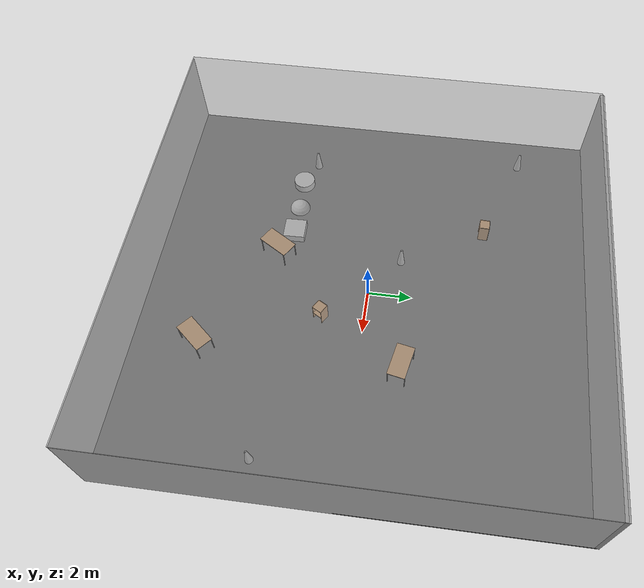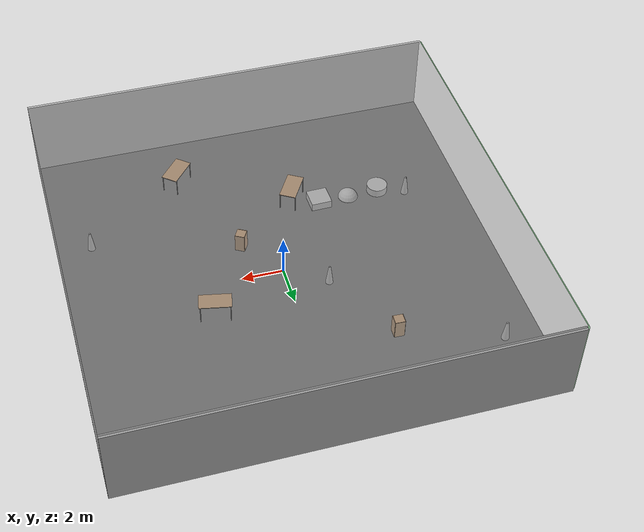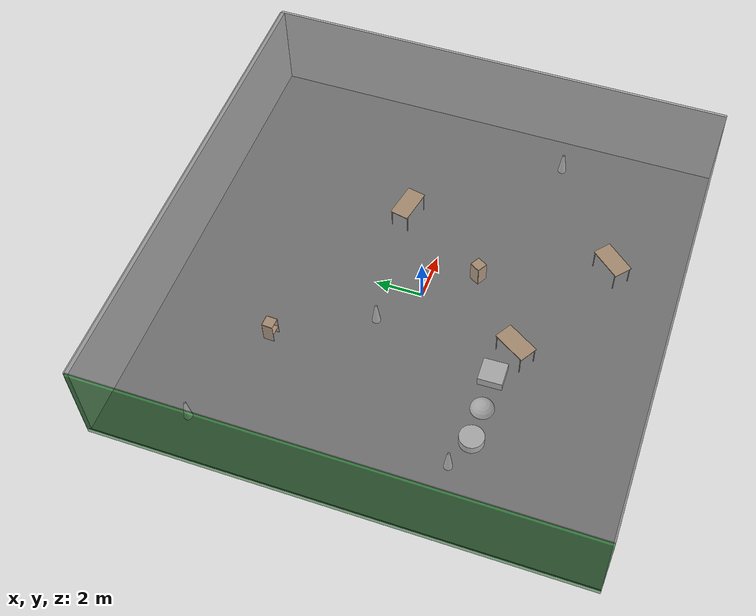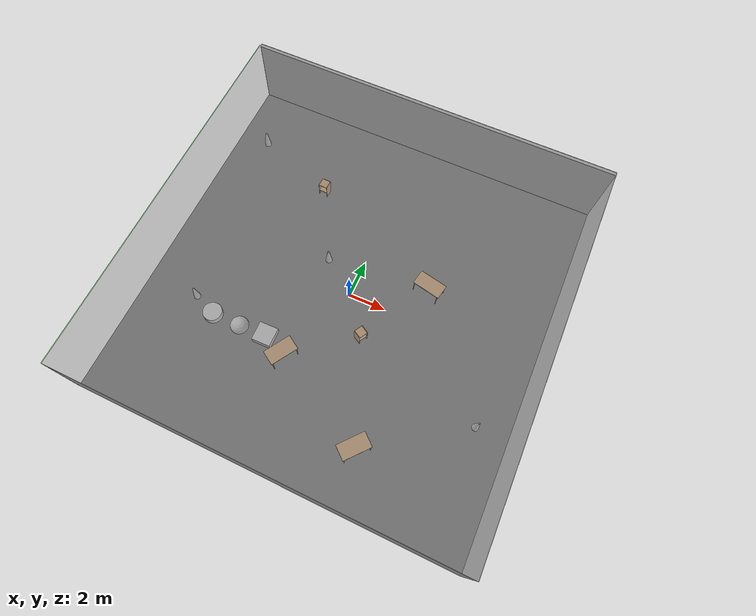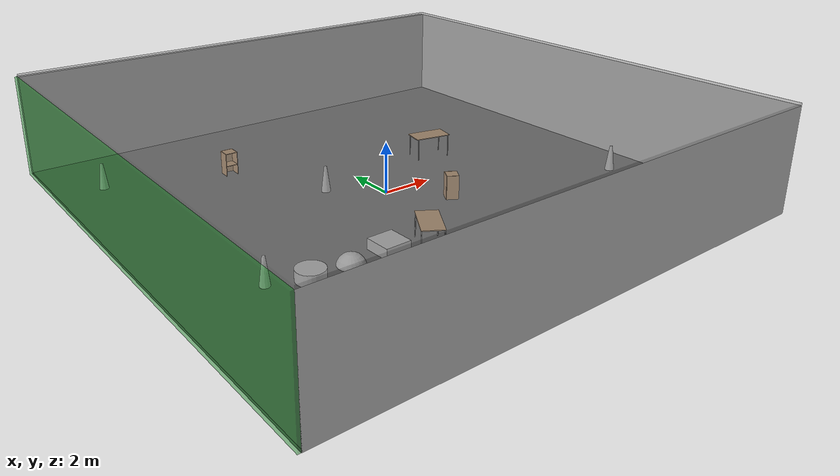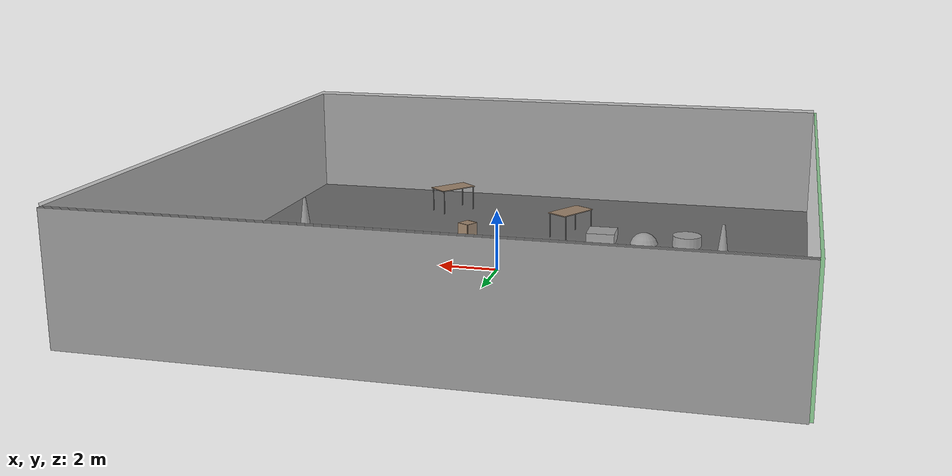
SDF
<sdf version="1.4">
 <world name="default">
  <physics type="ode">
   <max_step_size>0.001</max_step_size>
   <real_time_factor>1</real_time_factor>
   <real_time_update_rate>1000</real_time_update_rate>
   <gravity>0 0 -9.8</gravity>
  </physics>
  <scene><ambient>0.4 0.4 0.4 1</ambient><background>0.7 0.7 0.7 1</background><shadows>1</shadows></scene>
  <model name="Surrounding">
   <static>1</static>
   <link name="Ceiling">
    <collision name="Ceiling_Collision"><geometry><box><size>20 20 0.1</size></box></geometry></collision>
    <visual name="Ceiling_Visual">
     <geometry><box><size>20 20 0.1</size></box></geometry>
     <material>
      <script><uri>file://media/materials/scripts/gazebo.material</uri><name>Gazebo/GreyTransparent</name></script>
     </material>
    </visual>
    <pose>0 0 4.05 0 0 0</pose>
   </link>
   <link name="Wall_South">
    <collision name="Wall_South_Collision">
     <geometry><box><size>20 0 4</size></box></geometry>
     <pose>0 0 2 0 -0 0</pose>
    </collision>
    <visual name="Wall_South_Visual">
     <pose>0 0 2 0 -0 0</pose>
     <geometry><box><size>20 0 4</size></box></geometry>
     <material>
      <script><uri>file://media/materials/scripts/gazebo.material</uri><name>Gazebo/LightOff</name></script>
     </material>
    </visual>
    <velocity_decay><linear>0</linear><angular>0</angular></velocity_decay>
    <pose>0 -10 0 0 -0 0</pose>
   </link>
   <link name="Wall_East">
    <collision name="Wall_21_Collision">
     <geometry><box><size>20 0 4</size></box></geometry>
     <pose>0 0 2 0 -0 0</pose>
    </collision>
    <visual name="Wall_21_Visual">
     <pose>0 0 2 0 -0 0</pose>
     <geometry><box><size>20 0 4</size></box></geometry>
     <material>
      <script><uri>file://media/materials/scripts/gazebo.material</uri><name>Gazebo/JointAnchor</name></script>
     </material>
    </visual>
    <velocity_decay><linear>0</linear><angular>0</angular></velocity_decay>
    <pose>10 0 0 0 -0 1.5708</pose>
   </link>
   <link name="Wall_North">
    <collision name="Wall_22_Collision">
     <geometry><box><size>20 0.2 4</size></box></geometry>
     <pose>0 0 2 0 -0 0</pose>
    </collision>
    <visual name="Wall_22_Visual">
     <pose>0 0 2 0 -0 0</pose>
     <geometry><box><size>20 0.2 4</size></box></geometry>
     <material>
      <script><uri>file://media/materials/scripts/gazebo.material</uri><name>Gazebo/GreyGradientSky</name></script>
     </material>
    </visual>
    <velocity_decay><linear>0</linear><angular>0</angular></velocity_decay>
    <pose>0 10 0 0 -0 0</pose>
   </link>
   <link name="Wall_West">
    <collision name="Wall_23_Collision">
     <geometry><box><size>20 0.2 4</size></box></geometry>
     <pose>0 0 2 0 -0 0</pose>
    </collision>
    <visual name="Wall_23_Visual">
     <pose>0 0 2 0 -0 0</pose>
     <geometry><box><size>20 0.2 4</size></box></geometry>
     <material>
      <script><uri>file://media/materials/scripts/gazebo.material</uri><name>Gazebo/GreenTransparent</name></script>
     </material>
    </visual>
    <velocity_decay><linear>0</linear><angular>0</angular></velocity_decay>
    <pose>-10 0 0 0 0 -1.5708</pose>
   </link>
   <link name="Ground_link">
    <collision name="collision">
     <pose>0 0 .05 0 -0 0</pose>
     <geometry><box><size>20 20 0.1</size></box></geometry>
    </collision>
    <visual name="visual">
     <pose>0 0 .05 0 -0 0</pose>
     <geometry><box><size>20 20 0.1</size></box></geometry>
     <material>
      <script><uri>file://media/materials/scripts/gazebo.material</uri><name>Gazebo/Road</name></script>
     </material>
    </visual>
   </link>
   <static>1</static>
  </model>
  <spherical_coordinates>
   <surface_model>EARTH_WGS84</surface_model>
   <latitude_deg>0</latitude_deg>
   <longitude_deg>0</longitude_deg>
   <elevation>0</elevation>
   <heading_deg>0</heading_deg>
  </spherical_coordinates>
  <light name="lightball_0" type="diffuse">
   <diffuse>0.8 0.8 0.8 1</diffuse>
   <specular>0.2 0.2 0.2 1</specular>
   <attenuation>
    <range>100</range>
    <constant>0.7</constant>
    <linear>0.01</linear>
    <quadratic>0.001</quadratic>
   </attenuation>
   <direction>-0.5 0.1 -0.9</direction>
   <pose>-0.333509669786 0.383469827017 2.43823388 0 0 0</pose>
  </light>
  <light name="lightball_1" type="diffuse">
   <diffuse>0.8 0.8 0.8 1</diffuse>
   <specular>0.2 0.2 0.2 1</specular>
   <attenuation>
    <range>100</range>
    <constant>0.7</constant>
    <linear>0.01</linear>
    <quadratic>0.001</quadratic>
   </attenuation>
   <direction>-0.5 0.1 -0.9</direction>
   <pose>-9.91105645598 9.05600356478 2.66131520847 0 0 0</pose>
  </light>
  <light name="lightball_2" type="diffuse">
   <diffuse>0.8 0.8 0.8 1</diffuse>
   <specular>0.2 0.2 0.2 1</specular>
   <attenuation>
    <range>100</range>
    <constant>0.7</constant>
    <linear>0.01</linear>
    <quadratic>0.001</quadratic>
   </attenuation>
   <direction>-0.5 0.1 -0.9</direction>
   <pose>-8.66397430013 -1.87236149057 3.69924826688 0 0 0</pose>
  </light>
  <light name="lightball_3" type="diffuse">
   <diffuse>0.8 0.8 0.8 1</diffuse>
   <specular>0.2 0.2 0.2 1</specular>
   <attenuation>
    <range>100</range>
    <constant>0.7</constant>
    <linear>0.01</linear>
    <quadratic>0.001</quadratic>
   </attenuation>
   <direction>-0.5 0.1 -0.9</direction>
   <pose>-0.00103542779325 4.83606232221 3.14662390707 0 0 0</pose>
  </light>
  <light name="lightball_4" type="diffuse">
   <diffuse>0.8 0.8 0.8 1</diffuse>
   <specular>0.2 0.2 0.2 1</specular>
   <attenuation>
    <range>100</range>
    <constant>0.7</constant>
    <linear>0.01</linear>
    <quadratic>0.001</quadratic>
   </attenuation>
   <direction>-0.5 0.1 -0.9</direction>
   <pose>-2.25170494572 -7.41669511375 3.05773974417 0 0 0</pose>
  </light>
  <light name="lightball_5" type="diffuse">
   <diffuse>0.8 0.8 0.8 1</diffuse>
   <specular>0.2 0.2 0.2 1</specular>
   <attenuation>
    <range>100</range>
    <constant>0.7</constant>
    <linear>0.01</linear>
    <quadratic>0.001</quadratic>
   </attenuation>
   <direction>-0.5 0.1 -0.9</direction>
   <pose>6.74190837864 -7.82685268374 3.34894982403 0 0 0</pose>
  </light>
  <light name="lightball_6" type="diffuse">
   <diffuse>0.8 0.8 0.8 1</diffuse>
   <specular>0.2 0.2 0.2 1</specular>
   <attenuation>
    <range>100</range>
    <constant>0.7</constant>
    <linear>0.01</linear>
    <quadratic>0.001</quadratic>
   </attenuation>
   <direction>-0.5 0.1 -0.9</direction>
   <pose>-5.39678044997 7.97477425554 3.77899139932 0 0 0</pose>
  </light>
  <light name="lightball_7" type="diffuse">
   <diffuse>0.8 0.8 0.8 1</diffuse>
   <specular>0.2 0.2 0.2 1</specular>
   <attenuation>
    <range>100</range>
    <constant>0.7</constant>
    <linear>0.01</linear>
    <quadratic>0.001</quadratic>
   </attenuation>
   <direction>-0.5 0.1 -0.9</direction>
   <pose>-0.907822754827 -1.6334061251 1.95869511706 0 0 0</pose>
  </light>
  <light name="lightball_8" type="diffuse">
   <diffuse>0.8 0.8 0.8 1</diffuse>
   <specular>0.2 0.2 0.2 1</specular>
   <attenuation>
    <range>100</range>
    <constant>0.7</constant>
    <linear>0.01</linear>
    <quadratic>0.001</quadratic>
   </attenuation>
   <direction>-0.5 0.1 -0.9</direction>
   <pose>0.67050283213 -3.5224687932 3.8268916307 0 0 0</pose>
  </light>
  <light name="lightball_9" type="diffuse">
   <diffuse>0.8 0.8 0.8 1</diffuse>
   <specular>0.2 0.2 0.2 1</specular>
   <attenuation>
    <range>100</range>
    <constant>0.7</constant>
    <linear>0.01</linear>
    <quadratic>0.001</quadratic>
   </attenuation>
   <direction>-0.5 0.1 -0.9</direction>
   <pose>6.70096240765 -3.0848408891 1.76644350807 0 0 0</pose>
  </light>
  <light name="lightball_10" type="diffuse">
   <diffuse>0.8 0.8 0.8 1</diffuse>
   <specular>0.2 0.2 0.2 1</specular>
   <attenuation>
    <range>100</range>
    <constant>0.7</constant>
    <linear>0.01</linear>
    <quadratic>0.001</quadratic>
   </attenuation>
   <direction>-0.5 0.1 -0.9</direction>
   <pose>9.73677099779 -2.54231914544 1.87261352017 0 0 0</pose>
  </light>
  <light name="lightball_11" type="diffuse">
   <diffuse>0.8 0.8 0.8 1</diffuse>
   <specular>0.2 0.2 0.2 1</specular>
   <attenuation>
    <range>100</range>
    <constant>0.7</constant>
    <linear>0.01</linear>
    <quadratic>0.001</quadratic>
   </attenuation>
   <direction>-0.5 0.1 -0.9</direction>
   <pose>8.4384618975 -3.13772774296 2.41711950722 0 0 0</pose>
  </light>
  <include>
   <uri>model://construction_cone</uri>
   <pose>-7.15512180171 -3.44532554442 0 0 0 1.64259552815</pose>
  </include>
  <include>
   <uri>model://construction_cone</uri>
   <pose>-8.3136574935 6.63434591098 0 0 0 3.06670107128</pose>
  </include>
  <include>
   <uri>model://textured_shapes</uri>
   <pose>-4.38371471043 -3.92357409885 0 0 0 1.59335818033</pose>
  </include>
  <include><uri>model://cabinet</uri><pose>-3.85552315397 5.07087766183 0 0 0 1.52893859371</pose></include>
  <include><uri>model://table</uri><pose>-1.64585934177 -4.42394899082 0 0 0 1.01913539222</pose></include>
  <include>
   <uri>model://construction_cone</uri>
   <pose>-1.82335279102 1.33493428316 0 0 0 2.75277929599</pose>
  </include>
  <include><uri>model://cabinet</uri><pose>1.52854019449 -1.92536762621 0 0 0 2.61555863668</pose></include>
  <include><uri>model://table</uri><pose>3.51076768022 -7.06235213532 0 0 0 0.867799405854</pose></include>
  <include><uri>model://table</uri><pose>3.66979051205 1.88581462413 0 0 0 2.94192324785</pose></include>
  <include>
   <uri>model://construction_cone</uri>
   <pose>8.35509111268 -3.71468891075 0 0 0 0.261695512805</pose>
  </include>
 </world>
</sdf>

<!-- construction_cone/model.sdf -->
<sdf version="1.5">
  <model name="Construction Cone">
    <link name="link">
      <collision name="collision">
        <geometry>
          <mesh>
            <scale>10 10 10</scale>
            <uri>file://isr-testbed/construction_cone/meshes/construction_cone.dae</uri>
          </mesh>
        </geometry>
      </collision>
      <visual name="visual">
        <geometry>
          <mesh>
            <scale>10 10 10</scale>
            <uri>file://isr-testbed/construction_cone/meshes/construction_cone.dae</uri>
          </mesh>
        </geometry>
      </visual>
    </link>
  </model>
</sdf>

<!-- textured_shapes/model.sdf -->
<sdf version="1.6">
  <model name="textured_shapes">
    <pose>0 0 0.5 0 0 0</pose>
    <link name="box">
      <pose>0 -1.5 0 0 0 0</pose>
      <collision name="collision">
        <geometry>
          <box>
            <size>1 1 1</size>
          </box>
        </geometry>
      </collision>
      <visual name="visual">
        <geometry>
          <box>
            <size>1 1 1</size>
          </box>
        </geometry>
        <material>
          <script>
            <uri>model://../model_source/models/textured_shapes/materials/scripts</uri>
            <uri>model://../model_source/models/textured_shapes/materials/textures</uri>
            <name>TexturedShape/Squares</name>
          </script>
        </material>
      </visual>
    </link>
    <link name="sphere">
      <collision name="collision">
        <geometry>
          <sphere>
            <radius>0.5</radius>
          </sphere>
        </geometry>
      </collision>
      <visual name="visual">
        <geometry>
          <sphere>
            <radius>0.5</radius>
          </sphere>
        </geometry>
        <material>
          <script>
            <uri>model://../model_source/models/textured_shapes/materials/scripts</uri>
            <uri>model://../model_source/models/textured_shapes/materials/textures</uri>
            <name>TexturedShape/Squares</name>
          </script>
        </material>
      </visual>
    </link>
    <link name="cylinder">
      <pose>0 1.5 0 0 0 0</pose>
      <collision name="collision">
        <geometry>
          <cylinder>
            <radius>0.5</radius>
            <length>1</length>
          </cylinder>
        </geometry>
      </collision>
      <visual name="visual">
        <geometry>
          <cylinder>
            <radius>0.5</radius>
            <length>1</length>
          </cylinder>
        </geometry>
        <material>
          <script>
            <uri>model://../model_source/models/textured_shapes/materials/scripts</uri>
            <uri>model://../model_source/models/textured_shapes/materials/textures</uri>
            <name>TexturedShape/Squares</name>
          </script>
        </material>
      </visual>
    </link>
  </model>
</sdf>

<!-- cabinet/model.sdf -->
<sdf version="1.5">
  <model name="cabinet">
    <static>true</static>
    <link name="cabinet_bottom_plate">
      <inertial>
        <pose>0 0 -1 0 0 0</pose>
        <inertia>
          <ixx>2.050000</ixx>
          <ixy>0</ixy>
          <ixz>0</ixz>
          <iyy>2.050000</iyy>
          <iyz>0</iyz>
          <izz>2.050000</izz>
        </inertia>
        <mass>25.000000</mass>
      </inertial>
      <collision name="cabinet_bottom_plate_geom">
        <pose>0 0 0.010000 0 0 0</pose>
        <geometry>
          <box>
            <size>0.450000 0.450000 0.020000</size>
          </box>
        </geometry>
      </collision>
      <visual name="cabinet_bottom_plate_geom_visual">
        <pose>0 0 0.010000 0 0 0</pose>
        <geometry>
          <box>
            <size>0.450000 0.450000 0.020000</size>
          </box>
        </geometry>
        <material>
          <script>
            <uri>model://media/materials/scripts/gazebo.material</uri>
            <name>Gazebo/Wood</name>
          </script>
        </material>
      </visual>
      <collision name="cabinet_bottom_plate_geom_cabinet_back_plate">
        <pose>0.235000 0 0.510000 0 0 0</pose>
        <geometry>
          <box>
            <size>0.020000 0.450000 1.020000</size>
          </box>
        </geometry>
      </collision>
      <visual name="cabinet_bottom_plate_geom_cabinet_back_plate_visual">
        <pose>0.235000 0 0.510000 0 0 0</pose>
        <geometry>
          <box>
            <size>0.020000 0.450000 1.020000</size>
          </box>
        </geometry>
        <material>
          <script>
            <uri>model://media/materials/scripts/gazebo.material</uri>
            <name>Gazebo/Wood</name>
          </script>
        </material>
      </visual>
      <collision name="cabinet_bottom_plate_geom_cabinet_left_plate">
        <pose>0 0.235000 0.510000 0 0 0</pose>
        <geometry>
          <box>
            <size>0.450000 0.020000 1.020000</size>
          </box>
        </geometry>
      </collision>
      <visual name="cabinet_bottom_plate_geom_cabinet_left_plate_visual">
        <pose>0 0.235000 0.510000 0 0 0</pose>
        <geometry>
          <box>
            <size>0.450000 0.020000 1.020000</size>
          </box>
        </geometry>
        <material>
          <script>
            <uri>model://media/materials/scripts/gazebo.material</uri>
            <name>Gazebo/Wood</name>
          </script>
        </material>
      </visual>
      <collision name="cabinet_bottom_plate_geom_cabinet_middle_plate">
        <pose>0 0 0.510000 0 0 0</pose>
        <geometry>
          <box>
            <size>0.450000 0.450000 0.020000</size>
          </box>
        </geometry>
      </collision>
      <visual name="cabinet_bottom_plate_geom_cabinet_middle_plate_visual">
        <pose>0 0 0.510000 0 0 0</pose>
        <geometry>
          <box>
            <size>0.450000 0.450000 0.020000</size>
          </box>
        </geometry>
        <material>
          <script>
            <uri>model://media/materials/scripts/gazebo.material</uri>
            <name>Gazebo/Wood</name>
          </script>
        </material>
      </visual>
      <collision name="cabinet_bottom_plate_geom_cabinet_right_plate">
        <pose>0 -0.235000 0.510000 0 0 0</pose>
        <geometry>
          <box>
            <size>0.450000 0.020000 1.020000</size>
          </box>
        </geometry>
      </collision>
      <visual name="cabinet_bottom_plate_geom_cabinet_right_plate_visual">
        <pose>0 -0.235000 0.510000 0 0 0</pose>
        <geometry>
          <box>
            <size>0.450000 0.020000 1.020000</size>
          </box>
        </geometry>
        <material>
          <script>
            <uri>model://media/materials/scripts/gazebo.material</uri>
            <name>Gazebo/Wood</name>
          </script>
        </material>
      </visual>
      <collision name="cabinet_bottom_plate_geom_cabinet_top_plate">
        <pose>0 0 1.010000 0 0 0</pose>
        <geometry>
          <box>
            <size>0.450000 0.450000 0.020000</size>
          </box>
        </geometry>
      </collision>
      <visual name="cabinet_bottom_plate_geom_cabinet_top_plate_visual">
        <pose>0 0 1.010000 0 0 0</pose>
        <geometry>
          <box>
            <size>0.450000 0.450000 0.020000</size>
          </box>
        </geometry>
        <material>
          <script>
            <uri>model://media/materials/scripts/gazebo.material</uri>
            <name>Gazebo/Wood</name>
          </script>
        </material>
      </visual>
    </link>
  </model>
</sdf>

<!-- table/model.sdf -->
<sdf version="1.5">
  <model name="table">
    <static>true</static>
    <link name="link">
      <collision name="surface">
        <pose>0 0 1.0 0 0 0</pose>
        <geometry>
          <box>
            <size>1.5 0.8 0.03</size>
          </box>
        </geometry>
        <surface>
          <friction>
            <ode>
              <mu>0.6</mu>
              <mu2>0.6</mu2>
            </ode>
          </friction>
        </surface>
      </collision>
      <visual name="visual1">
        <pose>0 0 1.0 0 0 0</pose>
        <geometry>
          <box>
            <size>1.5 0.8 0.03</size>
          </box>
        </geometry>
        <material>
          <script>
            <uri>model://media/materials/scripts/gazebo.material</uri>
            <name>Gazebo/Wood</name>
          </script>
        </material>
      </visual>
      <collision name="front_left_leg">
        <pose>0.68 0.38 0.5 0 0 0</pose>
        <geometry>
          <cylinder>
            <radius>0.02</radius>
            <length>1.0</length>
          </cylinder>
        </geometry>
      </collision>
      <visual name="front_left_leg">
        <pose>0.68 0.38 0.5 0 0 0</pose>
        <geometry>
          <cylinder>
            <radius>0.02</radius>
            <length>1.0</length>
          </cylinder>
        </geometry>
        <material>
          <script>
            <uri>model://media/materials/scripts/gazebo.material</uri>
            <name>Gazebo/Grey</name>
          </script>
        </material>
      </visual>
      <collision name="front_right_leg">
        <pose>0.68 -0.38 0.5 0 0 0</pose>
        <geometry>
          <cylinder>
            <radius>0.02</radius>
            <length>1.0</length>
          </cylinder>
        </geometry>
      </collision>
      <visual name="front_right_leg">
        <pose>0.68 -0.38 0.5 0 0 0</pose>
        <geometry>
          <cylinder>
            <radius>0.02</radius>
            <length>1.0</length>
          </cylinder>
        </geometry>
        <material>
          <script>
            <uri>model://media/materials/scripts/gazebo.material</uri>
            <name>Gazebo/Grey</name>
          </script>
        </material>
      </visual>
      <collision name="back_right_leg">
        <pose>-0.68 -0.38 0.5 0 0 0</pose>
        <geometry>
          <cylinder>
            <radius>0.02</radius>
            <length>1.0</length>
          </cylinder>
        </geometry>
      </collision>
      <visual name="back_right_leg">
        <pose>-0.68 -0.38 0.5 0 0 0</pose>
        <geometry>
          <cylinder>
            <radius>0.02</radius>
            <length>1.0</length>
          </cylinder>
        </geometry>
        <material>
          <script>
            <uri>model://media/materials/scripts/gazebo.material</uri>
            <name>Gazebo/Grey</name>
          </script>
        </material>
      </visual>
      <collision name="back_left_leg">
        <pose>-0.68 0.38 0.5 0 0 0</pose>
        <geometry>
          <cylinder>
            <radius>0.02</radius>
            <length>1.0</length>
          </cylinder>
        </geometry>
      </collision>
      <visual name="back_left_leg">
        <pose>-0.68 0.38 0.5 0 0 0</pose>
        <geometry>
          <cylinder>
            <radius>0.02</radius>
            <length>1.0</length>
          </cylinder>
        </geometry>
        <material>
          <script>
            <uri>model://media/materials/scripts/gazebo.material</uri>
            <name>Gazebo/Grey</name>
          </script>
        </material>
      </visual>
    </link>
  </model>
</sdf>
